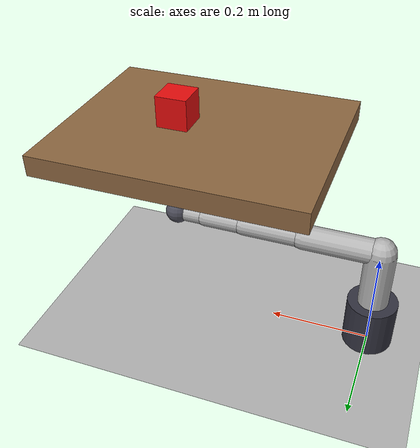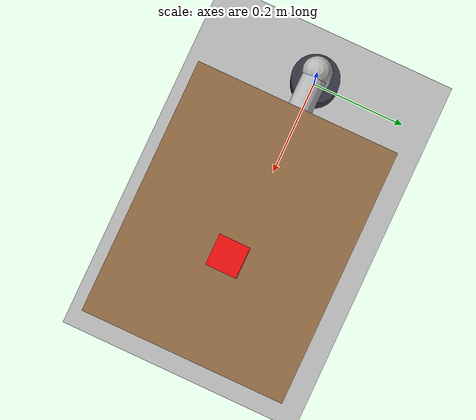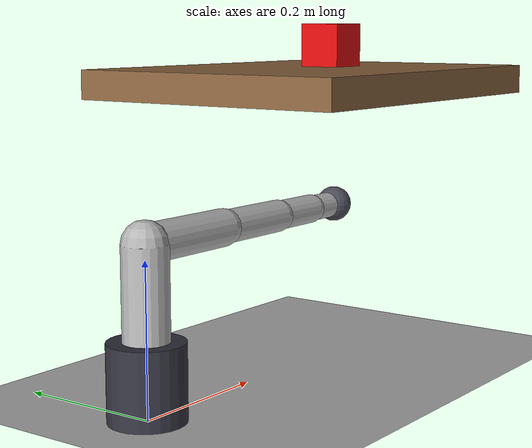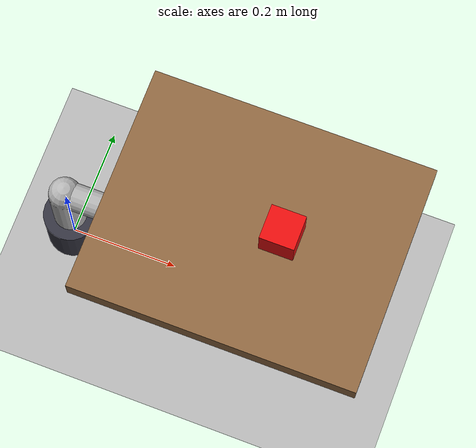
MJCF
<mujoco model="desktop_arm_red_blob">
  <compiler angle="radian" coordinate="local" inertiafromgeom="true"/>
  <option timestep="0.002" gravity="0 0 -9.81"/>

  <visual>
    <global offwidth="1280" offheight="720"/>
  </visual>

  <default>
    <joint limited="true" damping="1" armature="0.01"/>
    <geom friction="1 0.5 0.1" rgba="0.7 0.7 0.7 1"/>
  </default>

  <asset>
    <texture type="skybox" builtin="gradient" rgb1="0.3 0.5 0.7" rgb2="0 0 0" width="256" height="256"/>
    <texture name="texplane" type="2d" builtin="checker" rgb1=".2 .3 .4" rgb2=".1 .15 .2" width="256" height="256"/>
    <material name="matplane" reflectance="0.3" texture="texplane" texrepeat="4 4"/>
  </asset>

  <worldbody>
    <light pos="0 0 2" dir="0 0 -1" diffuse="1 1 1"/>
    <geom name="floor" type="plane" size="1 1 0.05" material="matplane"/>

    <!-- Red target blob on table -->
    <body name="table" pos="0.35 0 0.4">
      <geom type="box" size="0.25 0.2 0.02" rgba="0.55 0.4 0.25 1"/>
    </body>
    <body name="red_blob" pos="0.4 0 0.45">
      <geom name="red_blob_geom" type="box" size="0.03 0.03 0.03" rgba="0.9 0.05 0.05 1" contype="0" conaffinity="0"/>
    </body>

    <!-- Simplified 6-DoF serial arm (position actuators) -->
    <body name="base" pos="0 0 0.05">
      <geom type="cylinder" size="0.05 0.05" rgba="0.2 0.2 0.25 1"/>
      <body name="link1" pos="0 0 0.05">
        <joint name="joint_1" type="hinge" axis="0 0 1" range="-2.5 2.5"/>
        <geom type="capsule" fromto="0 0 0 0 0 0.12" size="0.03"/>
        <body name="link2" pos="0 0 0.12">
          <joint name="joint_2" type="hinge" axis="0 1 0" range="-2.0 2.0"/>
          <geom type="capsule" fromto="0 0 0 0.15 0 0" size="0.025"/>
          <body name="link3" pos="0.15 0 0">
            <joint name="joint_3" type="hinge" axis="0 1 0" range="-2.0 2.0"/>
            <geom type="capsule" fromto="0 0 0 0.12 0 0" size="0.022"/>
            <body name="link4" pos="0.12 0 0">
              <joint name="joint_4" type="hinge" axis="1 0 0" range="-2.5 2.5"/>
              <geom type="capsule" fromto="0 0 0 0.08 0 0" size="0.02"/>
              <body name="link5" pos="0.08 0 0">
                <joint name="joint_5" type="hinge" axis="0 1 0" range="-2.0 2.0"/>
                <geom type="capsule" fromto="0 0 0 0.06 0 0" size="0.018"/>
                <body name="link6" pos="0.06 0 0">
                  <joint name="joint_6" type="hinge" axis="1 0 0" range="-2.5 2.5"/>
                  <geom type="sphere" size="0.025" rgba="0.3 0.3 0.35 1"/>
                  <camera name="primary" pos="0.05 0 0.08" xyaxes="0 -1 0 0.3 0 1" fovy="60"/>
                </body>
              </body>
            </body>
          </body>
        </body>
      </body>
    </body>

    <!-- Fixed scene camera looking at table (more reliable for red blob) -->
    <camera name="scene" pos="0.5 -0.6 0.7" xyaxes="1 0.4 0 0 0.3 1" fovy="50"/>
  </worldbody>

  <actuator>
    <position name="act_1" joint="joint_1" kp="80" ctrlrange="-2.5 2.5"/>
    <position name="act_2" joint="joint_2" kp="80" ctrlrange="-2.0 2.0"/>
    <position name="act_3" joint="joint_3" kp="80" ctrlrange="-2.0 2.0"/>
    <position name="act_4" joint="joint_4" kp="60" ctrlrange="-2.5 2.5"/>
    <position name="act_5" joint="joint_5" kp="60" ctrlrange="-2.0 2.0"/>
    <position name="act_6" joint="joint_6" kp="40" ctrlrange="-2.5 2.5"/>
  </actuator>
</mujoco>
